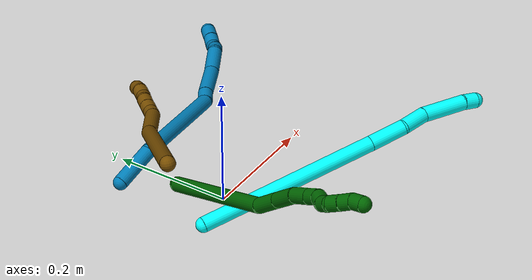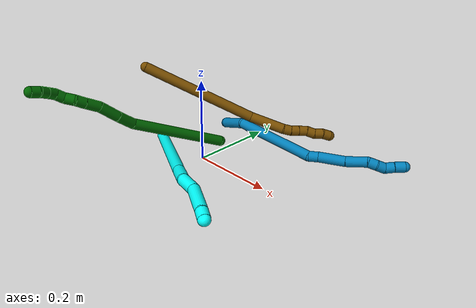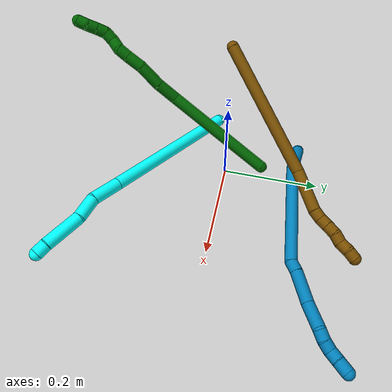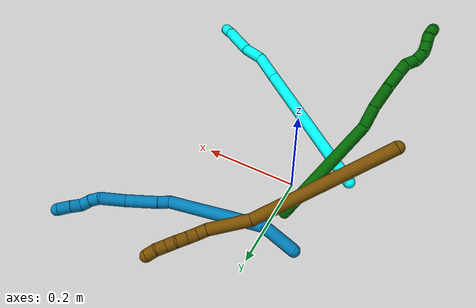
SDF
<sdf version="1.7">
 <world name="default">
  <model name="3">
   <static>0</static>
   <link name="3">
    <collision name="collision-cylinder-e_1_1_4">
     <pose>0.012003 0.006952 0.148515 -0.046779 0.080555 -0.001885</pose>
     <geometry><cylinder><radius>0.0125</radius><length>0.298323</length></cylinder></geometry>
     <surface>
      <friction><ode><mu>1.16</mu><mu2>1.16</mu2><slip1>0</slip1><slip2>0</slip2></ode></friction>
      <contact><ode><kp>1e+06</kp><kd>1</kd><max_vel>0</max_vel><min_depth>0.001</min_depth></ode></contact>
     </surface>
    </collision>
    <visual name="visual-cylinder-e_1_1_4">
     <pose>0.012003 0.006952 0.148515 -0.046779 0.080555 -0.001885</pose>
     <geometry><cylinder><radius>0.0125</radius><length>0.298323</length></cylinder></geometry>
     <material><ambient>0.003922 1 0.996078 1</ambient></material>
    </visual>
    <collision name="collision-cylinder-e_2_4_5">
     <pose>0.026843 0.015516 0.326698 -0.054253 0.095228 -0.002586</pose>
     <geometry><cylinder><radius>0.0125</radius><length>0.059694</length></cylinder></geometry>
     <surface>
      <friction><ode><mu>1.16</mu><mu2>1.16</mu2><slip1>0</slip1><slip2>0</slip2></ode></friction>
      <contact><ode><kp>1e+06</kp><kd>1</kd><max_vel>0</max_vel><min_depth>0.001</min_depth></ode></contact>
     </surface>
    </collision>
    <visual name="visual-cylinder-e_2_4_5">
     <pose>0.026843 0.015516 0.326698 -0.054253 0.095228 -0.002586</pose>
     <geometry><cylinder><radius>0.0125</radius><length>0.059694</length></cylinder></geometry>
     <material><ambient>0.003922 1 0.996078 1</ambient></material>
    </visual>
    <collision name="collision-cylinder-e_3_5_6">
     <pose>0.030885 0.010601 0.377937 0.293811 0.053367 0.007899</pose>
     <geometry><cylinder><radius>0.0125</radius><length>0.045137</length></cylinder></geometry>
     <surface>
      <friction><ode><mu>1.16</mu><mu2>1.16</mu2><slip1>0</slip1><slip2>0</slip2></ode></friction>
      <contact><ode><kp>1e+06</kp><kd>1</kd><max_vel>0</max_vel><min_depth>0.001</min_depth></ode></contact>
     </surface>
    </collision>
    <visual name="visual-cylinder-e_3_5_6">
     <pose>0.030885 0.010601 0.377937 0.293811 0.053367 0.007899</pose>
     <geometry><cylinder><radius>0.0125</radius><length>0.045137</length></cylinder></geometry>
     <material><ambient>0.003922 1 0.996078 1</ambient></material>
    </visual>
    <collision name="collision-cylinder-e_4_6_7">
     <pose>0.028613 0.002345 0.436431 0.046783 -0.093758 -0.002195</pose>
     <geometry><cylinder><radius>0.0125</radius><length>0.074254</length></cylinder></geometry>
     <surface>
      <friction><ode><mu>1.16</mu><mu2>1.16</mu2><slip1>0</slip1><slip2>0</slip2></ode></friction>
      <contact><ode><kp>1e+06</kp><kd>1</kd><max_vel>0</max_vel><min_depth>0.001</min_depth></ode></contact>
     </surface>
    </collision>
    <visual name="visual-cylinder-e_4_6_7">
     <pose>0.028613 0.002345 0.436431 0.046783 -0.093758 -0.002195</pose>
     <geometry><cylinder><radius>0.0125</radius><length>0.074254</length></cylinder></geometry>
     <material><ambient>0.003922 1 0.996078 1</ambient></material>
    </visual>
    <collision name="collision-cylinder-e_5_7_2">
     <pose>0.022543 -0.000637 0.484277 0.11431 -0.231736 -0.013319</pose>
     <geometry><cylinder><radius>0.0125</radius><length>0.022592</length></cylinder></geometry>
     <surface>
      <friction><ode><mu>1.16</mu><mu2>1.16</mu2><slip1>0</slip1><slip2>0</slip2></ode></friction>
      <contact><ode><kp>1e+06</kp><kd>1</kd><max_vel>0</max_vel><min_depth>0.001</min_depth></ode></contact>
     </surface>
    </collision>
    <visual name="visual-cylinder-e_5_7_2">
     <pose>0.022543 -0.000637 0.484277 0.11431 -0.231736 -0.013319</pose>
     <geometry><cylinder><radius>0.0125</radius><length>0.022592</length></cylinder></geometry>
     <material><ambient>0.003922 1 0.996078 1</ambient></material>
    </visual>
    <collision name="collision-sphere-2">
     <pose>0.019949 -0.001891 0.495199 0 -0 0</pose>
     <geometry><sphere><radius>0.0125</radius></sphere></geometry>
     <surface>
      <friction><ode><mu>1.16</mu><mu2>1.16</mu2><slip1>0</slip1><slip2>0</slip2></ode></friction>
      <contact><ode><kp>1e+06</kp><kd>1</kd><max_vel>0</max_vel><min_depth>0.001</min_depth></ode></contact>
     </surface>
    </collision>
    <visual name="visual-sphere-2">
     <pose>0.019949 -0.001891 0.495199 0 -0 0</pose>
     <geometry><sphere><radius>0.0125</radius></sphere></geometry>
     <material><ambient>0.003922 1 0.996078 1</ambient></material>
    </visual>
    <collision name="collision-sphere-7">
     <pose>0.025137 0.000617 0.473355 0 -0 0</pose>
     <geometry><sphere><radius>0.0125</radius></sphere></geometry>
     <surface>
      <friction><ode><mu>1.16</mu><mu2>1.16</mu2><slip1>0</slip1><slip2>0</slip2></ode></friction>
      <contact><ode><kp>1e+06</kp><kd>1</kd><max_vel>0</max_vel><min_depth>0.001</min_depth></ode></contact>
     </surface>
    </collision>
    <visual name="visual-sphere-7">
     <pose>0.025137 0.000617 0.473355 0 -0 0</pose>
     <geometry><sphere><radius>0.0125</radius></sphere></geometry>
     <material><ambient>0.003922 1 0.996078 1</ambient></material>
    </visual>
    <collision name="collision-sphere-6">
     <pose>0.032089 0.004074 0.399507 0 -0 0</pose>
     <geometry><sphere><radius>0.0125</radius></sphere></geometry>
     <surface>
      <friction><ode><mu>1.16</mu><mu2>1.16</mu2><slip1>0</slip1><slip2>0</slip2></ode></friction>
      <contact><ode><kp>1e+06</kp><kd>1</kd><max_vel>0</max_vel><min_depth>0.001</min_depth></ode></contact>
     </surface>
    </collision>
    <visual name="visual-sphere-6">
     <pose>0.032089 0.004074 0.399507 0 -0 0</pose>
     <geometry><sphere><radius>0.0125</radius></sphere></geometry>
     <material><ambient>0.003922 1 0.996078 1</ambient></material>
    </visual>
    <collision name="collision-sphere-5">
     <pose>0.029681 0.017127 0.356366 0 -0 0</pose>
     <geometry><sphere><radius>0.0125</radius></sphere></geometry>
     <surface>
      <friction><ode><mu>1.16</mu><mu2>1.16</mu2><slip1>0</slip1><slip2>0</slip2></ode></friction>
      <contact><ode><kp>1e+06</kp><kd>1</kd><max_vel>0</max_vel><min_depth>0.001</min_depth></ode></contact>
     </surface>
    </collision>
    <visual name="visual-sphere-5">
     <pose>0.029681 0.017127 0.356366 0 -0 0</pose>
     <geometry><sphere><radius>0.0125</radius></sphere></geometry>
     <material><ambient>0.003922 1 0.996078 1</ambient></material>
    </visual>
    <collision name="collision-sphere-1">
     <geometry><sphere><radius>0.0125</radius></sphere></geometry>
     <surface>
      <friction><ode><mu>1.16</mu><mu2>1.16</mu2><slip1>0</slip1><slip2>0</slip2></ode></friction>
      <contact><ode><kp>1e+06</kp><kd>1</kd><max_vel>0</max_vel><min_depth>0.001</min_depth></ode></contact>
     </surface>
    </collision>
    <visual name="visual-sphere-1">
     <geometry><sphere><radius>0.0125</radius></sphere></geometry>
     <material><ambient>0.003922 1 0.996078 1</ambient></material>
    </visual>
    <collision name="collision-sphere-4">
     <pose>0.024005 0.013905 0.29703 0 -0 0</pose>
     <geometry><sphere><radius>0.0125</radius></sphere></geometry>
     <surface>
      <friction><ode><mu>1.16</mu><mu2>1.16</mu2><slip1>0</slip1><slip2>0</slip2></ode></friction>
      <contact><ode><kp>1e+06</kp><kd>1</kd><max_vel>0</max_vel><min_depth>0.001</min_depth></ode></contact>
     </surface>
    </collision>
    <visual name="visual-sphere-4">
     <pose>0.024005 0.013905 0.29703 0 -0 0</pose>
     <geometry><sphere><radius>0.0125</radius></sphere></geometry>
     <material><ambient>0.003922 1 0.996078 1</ambient></material>
    </visual>
    <inertial>
     <pose>0.018422 0.007277 0.248428 0 -0 0</pose>
     <mass>0.5</mass>
     <inertia>
      <ixx>0.002282</ixx>
      <ixy>0</ixy>
      <ixz>0</ixz>
      <iyy>0.002285</iyy>
      <iyz>0</iyz>
      <izz>-0.000239</izz>
     </inertia>
    </inertial>
   </link>
   <pose>-0.108725 -0.036326 0.036052 1.28336 -1.13413 1.29592</pose>
  </model>
  <model name="6">
   <static>0</static>
   <link name="6">
    <collision name="collision-cylinder-e_1_1_4">
     <pose>0.007203 -0.007028 0.118784 0.059101 0.060459 0.001788</pose>
     <geometry><cylinder><radius>0.0125</radius><length>0.238419</length></cylinder></geometry>
     <surface>
      <friction><ode><mu>1.16</mu><mu2>1.16</mu2><slip1>0</slip1><slip2>0</slip2></ode></friction>
      <contact><ode><kp>1e+06</kp><kd>1</kd><max_vel>0</max_vel><min_depth>0.001</min_depth></ode></contact>
     </surface>
    </collision>
    <visual name="visual-cylinder-e_1_1_4">
     <pose>0.007203 -0.007028 0.118784 0.059101 0.060459 0.001788</pose>
     <geometry><cylinder><radius>0.0125</radius><length>0.238419</length></cylinder></geometry>
     <material><ambient>0 0.392157 0.003922 1</ambient></material>
    </visual>
    <collision name="collision-cylinder-e_2_4_5">
     <pose>0.0113 -0.021379 0.259489 0.322365 -0.133594 -0.021753</pose>
     <geometry><cylinder><radius>0.0125</radius><length>0.046639</length></cylinder></geometry>
     <surface>
      <friction><ode><mu>1.16</mu><mu2>1.16</mu2><slip1>0</slip1><slip2>0</slip2></ode></friction>
      <contact><ode><kp>1e+06</kp><kd>1</kd><max_vel>0</max_vel><min_depth>0.001</min_depth></ode></contact>
     </surface>
    </collision>
    <visual name="visual-cylinder-e_2_4_5">
     <pose>0.0113 -0.021379 0.259489 0.322365 -0.133594 -0.021753</pose>
     <geometry><cylinder><radius>0.0125</radius><length>0.046639</length></cylinder></geometry>
     <material><ambient>0 0.392157 0.003922 1</ambient></material>
    </visual>
    <collision name="collision-cylinder-e_3_5_6">
     <pose>0.00815 -0.037352 0.305397 0.346142 -0.001699 -0.000297</pose>
     <geometry><cylinder><radius>0.0125</radius><length>0.050998</length></cylinder></geometry>
     <surface>
      <friction><ode><mu>1.16</mu><mu2>1.16</mu2><slip1>0</slip1><slip2>0</slip2></ode></friction>
      <contact><ode><kp>1e+06</kp><kd>1</kd><max_vel>0</max_vel><min_depth>0.001</min_depth></ode></contact>
     </surface>
    </collision>
    <visual name="visual-cylinder-e_3_5_6">
     <pose>0.00815 -0.037352 0.305397 0.346142 -0.001699 -0.000297</pose>
     <geometry><cylinder><radius>0.0125</radius><length>0.050998</length></cylinder></geometry>
     <material><ambient>0 0.392157 0.003922 1</ambient></material>
    </visual>
    <collision name="collision-cylinder-e_4_6_7">
     <pose>0.007756 -0.048023 0.346551 0.117153 -0.020327 -0.001192</pose>
     <geometry><cylinder><radius>0.0125</radius><length>0.034579</length></cylinder></geometry>
     <surface>
      <friction><ode><mu>1.16</mu><mu2>1.16</mu2><slip1>0</slip1><slip2>0</slip2></ode></friction>
      <contact><ode><kp>1e+06</kp><kd>1</kd><max_vel>0</max_vel><min_depth>0.001</min_depth></ode></contact>
     </surface>
    </collision>
    <visual name="visual-cylinder-e_4_6_7">
     <pose>0.007756 -0.048023 0.346551 0.117153 -0.020327 -0.001192</pose>
     <geometry><cylinder><radius>0.0125</radius><length>0.034579</length></cylinder></geometry>
     <material><ambient>0 0.392157 0.003922 1</ambient></material>
    </visual>
    <collision name="collision-cylinder-e_5_7_8">
     <pose>0.00751 -0.051866 0.375317 0.15585 0.009013 0.000704</pose>
     <geometry><cylinder><radius>0.0125</radius><length>0.023482</length></cylinder></geometry>
     <surface>
      <friction><ode><mu>1.16</mu><mu2>1.16</mu2><slip1>0</slip1><slip2>0</slip2></ode></friction>
      <contact><ode><kp>1e+06</kp><kd>1</kd><max_vel>0</max_vel><min_depth>0.001</min_depth></ode></contact>
     </surface>
    </collision>
    <visual name="visual-cylinder-e_5_7_8">
     <pose>0.00751 -0.051866 0.375317 0.15585 0.009013 0.000704</pose>
     <geometry><cylinder><radius>0.0125</radius><length>0.023482</length></cylinder></geometry>
     <material><ambient>0 0.392157 0.003922 1</ambient></material>
    </visual>
    <collision name="collision-cylinder-e_6_8_9">
     <pose>0.013154 -0.053069 0.397388 -0.059055 0.485686 -0.014634</pose>
     <geometry><cylinder><radius>0.0125</radius><length>0.023727</length></cylinder></geometry>
     <surface>
      <friction><ode><mu>1.16</mu><mu2>1.16</mu2><slip1>0</slip1><slip2>0</slip2></ode></friction>
      <contact><ode><kp>1e+06</kp><kd>1</kd><max_vel>0</max_vel><min_depth>0.001</min_depth></ode></contact>
     </surface>
    </collision>
    <visual name="visual-cylinder-e_6_8_9">
     <pose>0.013154 -0.053069 0.397388 -0.059055 0.485686 -0.014634</pose>
     <geometry><cylinder><radius>0.0125</radius><length>0.023727</length></cylinder></geometry>
     <material><ambient>0 0.392157 0.003922 1</ambient></material>
    </visual>
    <collision name="collision-cylinder-e_7_9_10">
     <pose>0.020035 -0.055063 0.418089 0.25008 0.126542 0.015927</pose>
     <geometry><cylinder><radius>0.0125</radius><length>0.021282</length></cylinder></geometry>
     <surface>
      <friction><ode><mu>1.16</mu><mu2>1.16</mu2><slip1>0</slip1><slip2>0</slip2></ode></friction>
      <contact><ode><kp>1e+06</kp><kd>1</kd><max_vel>0</max_vel><min_depth>0.001</min_depth></ode></contact>
     </surface>
    </collision>
    <visual name="visual-cylinder-e_7_9_10">
     <pose>0.020035 -0.055063 0.418089 0.25008 0.126542 0.015927</pose>
     <geometry><cylinder><radius>0.0125</radius><length>0.021282</length></cylinder></geometry>
     <material><ambient>0 0.392157 0.003922 1</ambient></material>
    </visual>
    <collision name="collision-cylinder-e_8_10_11">
     <pose>0.018129 -0.058717 0.438099 0.106161 -0.318983 -0.017093</pose>
     <geometry><cylinder><radius>0.0125</radius><length>0.020722</length></cylinder></geometry>
     <surface>
      <friction><ode><mu>1.16</mu><mu2>1.16</mu2><slip1>0</slip1><slip2>0</slip2></ode></friction>
      <contact><ode><kp>1e+06</kp><kd>1</kd><max_vel>0</max_vel><min_depth>0.001</min_depth></ode></contact>
     </surface>
    </collision>
    <visual name="visual-cylinder-e_8_10_11">
     <pose>0.018129 -0.058717 0.438099 0.106161 -0.318983 -0.017093</pose>
     <geometry><cylinder><radius>0.0125</radius><length>0.020722</length></cylinder></geometry>
     <material><ambient>0 0.392157 0.003922 1</ambient></material>
    </visual>
    <collision name="collision-cylinder-e_9_11_12">
     <pose>0.011003 -0.060739 0.457086 0.105969 -0.396661 -0.021316</pose>
     <geometry><cylinder><radius>0.0125</radius><length>0.02007</length></cylinder></geometry>
     <surface>
      <friction><ode><mu>1.16</mu><mu2>1.16</mu2><slip1>0</slip1><slip2>0</slip2></ode></friction>
      <contact><ode><kp>1e+06</kp><kd>1</kd><max_vel>0</max_vel><min_depth>0.001</min_depth></ode></contact>
     </surface>
    </collision>
    <visual name="visual-cylinder-e_9_11_12">
     <pose>0.011003 -0.060739 0.457086 0.105969 -0.396661 -0.021316</pose>
     <geometry><cylinder><radius>0.0125</radius><length>0.02007</length></cylinder></geometry>
     <material><ambient>0 0.392157 0.003922 1</ambient></material>
    </visual>
    <collision name="collision-cylinder-e_10_12_2">
     <pose>0.005984 -0.06048 0.476189 -0.124349 -0.113915 0.007099</pose>
     <geometry><cylinder><radius>0.0125</radius><length>0.020082</length></cylinder></geometry>
     <surface>
      <friction><ode><mu>1.16</mu><mu2>1.16</mu2><slip1>0</slip1><slip2>0</slip2></ode></friction>
      <contact><ode><kp>1e+06</kp><kd>1</kd><max_vel>0</max_vel><min_depth>0.001</min_depth></ode></contact>
     </surface>
    </collision>
    <visual name="visual-cylinder-e_10_12_2">
     <pose>0.005984 -0.06048 0.476189 -0.124349 -0.113915 0.007099</pose>
     <geometry><cylinder><radius>0.0125</radius><length>0.020082</length></cylinder></geometry>
     <material><ambient>0 0.392157 0.003922 1</ambient></material>
    </visual>
    <collision name="collision-sphere-2">
     <pose>0.004843 -0.059243 0.486088 0 -0 0</pose>
     <geometry><sphere><radius>0.0125</radius></sphere></geometry>
     <surface>
      <friction><ode><mu>1.16</mu><mu2>1.16</mu2><slip1>0</slip1><slip2>0</slip2></ode></friction>
      <contact><ode><kp>1e+06</kp><kd>1</kd><max_vel>0</max_vel><min_depth>0.001</min_depth></ode></contact>
     </surface>
    </collision>
    <visual name="visual-sphere-2">
     <pose>0.004843 -0.059243 0.486088 0 -0 0</pose>
     <geometry><sphere><radius>0.0125</radius></sphere></geometry>
     <material><ambient>0 0.392157 0.003922 1</ambient></material>
    </visual>
    <collision name="collision-sphere-12">
     <pose>0.007126 -0.061718 0.46629 0 -0 0</pose>
     <geometry><sphere><radius>0.0125</radius></sphere></geometry>
     <surface>
      <friction><ode><mu>1.16</mu><mu2>1.16</mu2><slip1>0</slip1><slip2>0</slip2></ode></friction>
      <contact><ode><kp>1e+06</kp><kd>1</kd><max_vel>0</max_vel><min_depth>0.001</min_depth></ode></contact>
     </surface>
    </collision>
    <visual name="visual-sphere-12">
     <pose>0.007126 -0.061718 0.46629 0 -0 0</pose>
     <geometry><sphere><radius>0.0125</radius></sphere></geometry>
     <material><ambient>0 0.392157 0.003922 1</ambient></material>
    </visual>
    <collision name="collision-sphere-11">
     <pose>0.01488 -0.05976 0.447882 0 -0 0</pose>
     <geometry><sphere><radius>0.0125</radius></sphere></geometry>
     <surface>
      <friction><ode><mu>1.16</mu><mu2>1.16</mu2><slip1>0</slip1><slip2>0</slip2></ode></friction>
      <contact><ode><kp>1e+06</kp><kd>1</kd><max_vel>0</max_vel><min_depth>0.001</min_depth></ode></contact>
     </surface>
    </collision>
    <visual name="visual-sphere-11">
     <pose>0.01488 -0.05976 0.447882 0 -0 0</pose>
     <geometry><sphere><radius>0.0125</radius></sphere></geometry>
     <material><ambient>0 0.392157 0.003922 1</ambient></material>
    </visual>
    <collision name="collision-sphere-10">
     <pose>0.021378 -0.057675 0.428317 0 -0 0</pose>
     <geometry><sphere><radius>0.0125</radius></sphere></geometry>
     <surface>
      <friction><ode><mu>1.16</mu><mu2>1.16</mu2><slip1>0</slip1><slip2>0</slip2></ode></friction>
      <contact><ode><kp>1e+06</kp><kd>1</kd><max_vel>0</max_vel><min_depth>0.001</min_depth></ode></contact>
     </surface>
    </collision>
    <visual name="visual-sphere-10">
     <pose>0.021378 -0.057675 0.428317 0 -0 0</pose>
     <geometry><sphere><radius>0.0125</radius></sphere></geometry>
     <material><ambient>0 0.392157 0.003922 1</ambient></material>
    </visual>
    <collision name="collision-sphere-9">
     <pose>0.018692 -0.05245 0.407862 0 -0 0</pose>
     <geometry><sphere><radius>0.0125</radius></sphere></geometry>
     <surface>
      <friction><ode><mu>1.16</mu><mu2>1.16</mu2><slip1>0</slip1><slip2>0</slip2></ode></friction>
      <contact><ode><kp>1e+06</kp><kd>1</kd><max_vel>0</max_vel><min_depth>0.001</min_depth></ode></contact>
     </surface>
    </collision>
    <visual name="visual-sphere-9">
     <pose>0.018692 -0.05245 0.407862 0 -0 0</pose>
     <geometry><sphere><radius>0.0125</radius></sphere></geometry>
     <material><ambient>0 0.392157 0.003922 1</ambient></material>
    </visual>
    <collision name="collision-sphere-4">
     <pose>0.014406 -0.014057 0.237568 0 -0 0</pose>
     <geometry><sphere><radius>0.0125</radius></sphere></geometry>
     <surface>
      <friction><ode><mu>1.16</mu><mu2>1.16</mu2><slip1>0</slip1><slip2>0</slip2></ode></friction>
      <contact><ode><kp>1e+06</kp><kd>1</kd><max_vel>0</max_vel><min_depth>0.001</min_depth></ode></contact>
     </surface>
    </collision>
    <visual name="visual-sphere-4">
     <pose>0.014406 -0.014057 0.237568 0 -0 0</pose>
     <geometry><sphere><radius>0.0125</radius></sphere></geometry>
     <material><ambient>0 0.392157 0.003922 1</ambient></material>
    </visual>
    <collision name="collision-sphere-1">
     <geometry><sphere><radius>0.0125</radius></sphere></geometry>
     <surface>
      <friction><ode><mu>1.16</mu><mu2>1.16</mu2><slip1>0</slip1><slip2>0</slip2></ode></friction>
      <contact><ode><kp>1e+06</kp><kd>1</kd><max_vel>0</max_vel><min_depth>0.001</min_depth></ode></contact>
     </surface>
    </collision>
    <visual name="visual-sphere-1">
     <geometry><sphere><radius>0.0125</radius></sphere></geometry>
     <material><ambient>0 0.392157 0.003922 1</ambient></material>
    </visual>
    <collision name="collision-sphere-8">
     <pose>0.007616 -0.053689 0.386915 0 -0 0</pose>
     <geometry><sphere><radius>0.0125</radius></sphere></geometry>
     <surface>
      <friction><ode><mu>1.16</mu><mu2>1.16</mu2><slip1>0</slip1><slip2>0</slip2></ode></friction>
      <contact><ode><kp>1e+06</kp><kd>1</kd><max_vel>0</max_vel><min_depth>0.001</min_depth></ode></contact>
     </surface>
    </collision>
    <visual name="visual-sphere-8">
     <pose>0.007616 -0.053689 0.386915 0 -0 0</pose>
     <geometry><sphere><radius>0.0125</radius></sphere></geometry>
     <material><ambient>0 0.392157 0.003922 1</ambient></material>
    </visual>
    <collision name="collision-sphere-5">
     <pose>0.008194 -0.028701 0.28141 0 -0 0</pose>
     <geometry><sphere><radius>0.0125</radius></sphere></geometry>
     <surface>
      <friction><ode><mu>1.16</mu><mu2>1.16</mu2><slip1>0</slip1><slip2>0</slip2></ode></friction>
      <contact><ode><kp>1e+06</kp><kd>1</kd><max_vel>0</max_vel><min_depth>0.001</min_depth></ode></contact>
     </surface>
    </collision>
    <visual name="visual-sphere-5">
     <pose>0.008194 -0.028701 0.28141 0 -0 0</pose>
     <geometry><sphere><radius>0.0125</radius></sphere></geometry>
     <material><ambient>0 0.392157 0.003922 1</ambient></material>
    </visual>
    <collision name="collision-sphere-6">
     <pose>0.008107 -0.046003 0.329384 0 -0 0</pose>
     <geometry><sphere><radius>0.0125</radius></sphere></geometry>
     <surface>
      <friction><ode><mu>1.16</mu><mu2>1.16</mu2><slip1>0</slip1><slip2>0</slip2></ode></friction>
      <contact><ode><kp>1e+06</kp><kd>1</kd><max_vel>0</max_vel><min_depth>0.001</min_depth></ode></contact>
     </surface>
    </collision>
    <visual name="visual-sphere-6">
     <pose>0.008107 -0.046003 0.329384 0 -0 0</pose>
     <geometry><sphere><radius>0.0125</radius></sphere></geometry>
     <material><ambient>0 0.392157 0.003922 1</ambient></material>
    </visual>
    <collision name="collision-sphere-7">
     <pose>0.007404 -0.050044 0.363719 0 -0 0</pose>
     <geometry><sphere><radius>0.0125</radius></sphere></geometry>
     <surface>
      <friction><ode><mu>1.16</mu><mu2>1.16</mu2><slip1>0</slip1><slip2>0</slip2></ode></friction>
      <contact><ode><kp>1e+06</kp><kd>1</kd><max_vel>0</max_vel><min_depth>0.001</min_depth></ode></contact>
     </surface>
    </collision>
    <visual name="visual-sphere-7">
     <pose>0.007404 -0.050044 0.363719 0 -0 0</pose>
     <geometry><sphere><radius>0.0125</radius></sphere></geometry>
     <material><ambient>0 0.392157 0.003922 1</ambient></material>
    </visual>
    <inertial>
     <pose>0.009119 -0.027075 0.245871 0 -0 0</pose>
     <mass>0.5</mass>
     <inertia>
      <ixx>0.001176</ixx>
      <ixy>0</ixy>
      <ixz>0</ixz>
      <iyy>0.001171</iyy>
      <iyz>0</iyz>
      <izz>4.7e-05</izz>
     </inertia>
    </inertial>
   </link>
   <pose>-0.019155 0.0761 0.011978 -1.232 0.051474 2.87971</pose>
  </model>
  <model name="9">
   <static>0</static>
   <link name="9">
    <collision name="collision-cylinder-e_1_1_4">
     <pose>0.005015 0.016483 0.031125 -0.487039 0.141451 -0.035199</pose>
     <geometry><cylinder><radius>0.0125</radius><length>0.071151</length></cylinder></geometry>
     <surface>
      <friction><ode><mu>1.16</mu><mu2>1.16</mu2><slip1>0</slip1><slip2>0</slip2></ode></friction>
      <contact><ode><kp>1e+06</kp><kd>1</kd><max_vel>0</max_vel><min_depth>0.001</min_depth></ode></contact>
     </surface>
    </collision>
    <visual name="visual-cylinder-e_1_1_4">
     <pose>0.005015 0.016483 0.031125 -0.487039 0.141451 -0.035199</pose>
     <geometry><cylinder><radius>0.0125</radius><length>0.071151</length></cylinder></geometry>
     <material><ambient>0 0.490196 0.709804 1</ambient></material>
    </visual>
    <collision name="collision-cylinder-e_2_4_5">
     <pose>-0.002564 0.037088 0.162172 -0.041222 -0.125279 0.002586</pose>
     <geometry><cylinder><radius>0.0125</radius><length>0.201594</length></cylinder></geometry>
     <surface>
      <friction><ode><mu>1.16</mu><mu2>1.16</mu2><slip1>0</slip1><slip2>0</slip2></ode></friction>
      <contact><ode><kp>1e+06</kp><kd>1</kd><max_vel>0</max_vel><min_depth>0.001</min_depth></ode></contact>
     </surface>
    </collision>
    <visual name="visual-cylinder-e_2_4_5">
     <pose>-0.002564 0.037088 0.162172 -0.041222 -0.125279 0.002586</pose>
     <geometry><cylinder><radius>0.0125</radius><length>0.201594</length></cylinder></geometry>
     <material><ambient>0 0.490196 0.709804 1</ambient></material>
    </visual>
    <collision name="collision-cylinder-e_3_5_6">
     <pose>-0.01212 0.038507 0.273059 0.241684 0.262797 0.032095</pose>
     <geometry><cylinder><radius>0.0125</radius><length>0.02339</length></cylinder></geometry>
     <surface>
      <friction><ode><mu>1.16</mu><mu2>1.16</mu2><slip1>0</slip1><slip2>0</slip2></ode></friction>
      <contact><ode><kp>1e+06</kp><kd>1</kd><max_vel>0</max_vel><min_depth>0.001</min_depth></ode></contact>
     </surface>
    </collision>
    <visual name="visual-cylinder-e_3_5_6">
     <pose>-0.01212 0.038507 0.273059 0.241684 0.262797 0.032095</pose>
     <geometry><cylinder><radius>0.0125</radius><length>0.02339</length></cylinder></geometry>
     <material><ambient>0 0.490196 0.709804 1</ambient></material>
    </visual>
    <collision name="collision-cylinder-e_4_6_7">
     <pose>-0.003705 0.031188 0.315637 0.144974 0.16675 0.012136</pose>
     <geometry><cylinder><radius>0.0125</radius><length>0.064794</length></cylinder></geometry>
     <surface>
      <friction><ode><mu>1.16</mu><mu2>1.16</mu2><slip1>0</slip1><slip2>0</slip2></ode></friction>
      <contact><ode><kp>1e+06</kp><kd>1</kd><max_vel>0</max_vel><min_depth>0.001</min_depth></ode></contact>
     </surface>
    </collision>
    <visual name="visual-cylinder-e_4_6_7">
     <pose>-0.003705 0.031188 0.315637 0.144974 0.16675 0.012136</pose>
     <geometry><cylinder><radius>0.0125</radius><length>0.064794</length></cylinder></geometry>
     <material><ambient>0 0.490196 0.709804 1</ambient></material>
    </visual>
    <collision name="collision-cylinder-e_5_7_8">
     <pose>0.009401 0.024028 0.371604 0.104089 0.305713 0.01605</pose>
     <geometry><cylinder><radius>0.0125</radius><length>0.051357</length></cylinder></geometry>
     <surface>
      <friction><ode><mu>1.16</mu><mu2>1.16</mu2><slip1>0</slip1><slip2>0</slip2></ode></friction>
      <contact><ode><kp>1e+06</kp><kd>1</kd><max_vel>0</max_vel><min_depth>0.001</min_depth></ode></contact>
     </surface>
    </collision>
    <visual name="visual-cylinder-e_5_7_8">
     <pose>0.009401 0.024028 0.371604 0.104089 0.305713 0.01605</pose>
     <geometry><cylinder><radius>0.0125</radius><length>0.051357</length></cylinder></geometry>
     <material><ambient>0 0.490196 0.709804 1</ambient></material>
    </visual>
    <collision name="collision-cylinder-e_6_8_9">
     <pose>0.017008 0.017456 0.40532 0.406367 -0.011882 -0.002448</pose>
     <geometry><cylinder><radius>0.0125</radius><length>0.020381</length></cylinder></geometry>
     <surface>
      <friction><ode><mu>1.16</mu><mu2>1.16</mu2><slip1>0</slip1><slip2>0</slip2></ode></friction>
      <contact><ode><kp>1e+06</kp><kd>1</kd><max_vel>0</max_vel><min_depth>0.001</min_depth></ode></contact>
     </surface>
    </collision>
    <visual name="visual-cylinder-e_6_8_9">
     <pose>0.017008 0.017456 0.40532 0.406367 -0.011882 -0.002448</pose>
     <geometry><cylinder><radius>0.0125</radius><length>0.020381</length></cylinder></geometry>
     <material><ambient>0 0.490196 0.709804 1</ambient></material>
    </visual>
    <collision name="collision-cylinder-e_7_9_10">
     <pose>0.016817 0.007152 0.423046 0.64367 -0.006712 -0.002238</pose>
     <geometry><cylinder><radius>0.0125</radius><length>0.020919</length></cylinder></geometry>
     <surface>
      <friction><ode><mu>1.16</mu><mu2>1.16</mu2><slip1>0</slip1><slip2>0</slip2></ode></friction>
      <contact><ode><kp>1e+06</kp><kd>1</kd><max_vel>0</max_vel><min_depth>0.001</min_depth></ode></contact>
     </surface>
    </collision>
    <visual name="visual-cylinder-e_7_9_10">
     <pose>0.016817 0.007152 0.423046 0.64367 -0.006712 -0.002238</pose>
     <geometry><cylinder><radius>0.0125</radius><length>0.020919</length></cylinder></geometry>
     <material><ambient>0 0.490196 0.709804 1</ambient></material>
    </visual>
    <collision name="collision-cylinder-e_8_10_11">
     <pose>0.021397 -0.002696 0.440572 0.371689 0.441846 0.084402</pose>
     <geometry><cylinder><radius>0.0125</radius><length>0.02175</length></cylinder></geometry>
     <surface>
      <friction><ode><mu>1.16</mu><mu2>1.16</mu2><slip1>0</slip1><slip2>0</slip2></ode></friction>
      <contact><ode><kp>1e+06</kp><kd>1</kd><max_vel>0</max_vel><min_depth>0.001</min_depth></ode></contact>
     </surface>
    </collision>
    <visual name="visual-cylinder-e_8_10_11">
     <pose>0.021397 -0.002696 0.440572 0.371689 0.441846 0.084402</pose>
     <geometry><cylinder><radius>0.0125</radius><length>0.02175</length></cylinder></geometry>
     <material><ambient>0 0.490196 0.709804 1</ambient></material>
    </visual>
    <collision name="collision-cylinder-e_9_11_2">
     <pose>0.030543 -0.011317 0.460044 0.455382 0.373185 0.087432</pose>
     <geometry><cylinder><radius>0.0125</radius><length>0.024664</length></cylinder></geometry>
     <surface>
      <friction><ode><mu>1.16</mu><mu2>1.16</mu2><slip1>0</slip1><slip2>0</slip2></ode></friction>
      <contact><ode><kp>1e+06</kp><kd>1</kd><max_vel>0</max_vel><min_depth>0.001</min_depth></ode></contact>
     </surface>
    </collision>
    <visual name="visual-cylinder-e_9_11_2">
     <pose>0.030543 -0.011317 0.460044 0.455382 0.373185 0.087432</pose>
     <geometry><cylinder><radius>0.0125</radius><length>0.024664</length></cylinder></geometry>
     <material><ambient>0 0.490196 0.709804 1</ambient></material>
    </visual>
    <collision name="collision-sphere-2">
     <pose>0.035039 -0.016367 0.470357 0 -0 0</pose>
     <geometry><sphere><radius>0.0125</radius></sphere></geometry>
     <surface>
      <friction><ode><mu>1.16</mu><mu2>1.16</mu2><slip1>0</slip1><slip2>0</slip2></ode></friction>
      <contact><ode><kp>1e+06</kp><kd>1</kd><max_vel>0</max_vel><min_depth>0.001</min_depth></ode></contact>
     </surface>
    </collision>
    <visual name="visual-sphere-2">
     <pose>0.035039 -0.016367 0.470357 0 -0 0</pose>
     <geometry><sphere><radius>0.0125</radius></sphere></geometry>
     <material><ambient>0 0.490196 0.709804 1</ambient></material>
    </visual>
    <collision name="collision-sphere-11">
     <pose>0.026047 -0.006266 0.449732 0 -0 0</pose>
     <geometry><sphere><radius>0.0125</radius></sphere></geometry>
     <surface>
      <friction><ode><mu>1.16</mu><mu2>1.16</mu2><slip1>0</slip1><slip2>0</slip2></ode></friction>
      <contact><ode><kp>1e+06</kp><kd>1</kd><max_vel>0</max_vel><min_depth>0.001</min_depth></ode></contact>
     </surface>
    </collision>
    <visual name="visual-sphere-11">
     <pose>0.026047 -0.006266 0.449732 0 -0 0</pose>
     <geometry><sphere><radius>0.0125</radius></sphere></geometry>
     <material><ambient>0 0.490196 0.709804 1</ambient></material>
    </visual>
    <collision name="collision-sphere-10">
     <pose>0.016746 0.000875 0.431413 0 -0 0</pose>
     <geometry><sphere><radius>0.0125</radius></sphere></geometry>
     <surface>
      <friction><ode><mu>1.16</mu><mu2>1.16</mu2><slip1>0</slip1><slip2>0</slip2></ode></friction>
      <contact><ode><kp>1e+06</kp><kd>1</kd><max_vel>0</max_vel><min_depth>0.001</min_depth></ode></contact>
     </surface>
    </collision>
    <visual name="visual-sphere-10">
     <pose>0.016746 0.000875 0.431413 0 -0 0</pose>
     <geometry><sphere><radius>0.0125</radius></sphere></geometry>
     <material><ambient>0 0.490196 0.709804 1</ambient></material>
    </visual>
    <collision name="collision-sphere-9">
     <pose>0.016887 0.013428 0.41468 0 -0 0</pose>
     <geometry><sphere><radius>0.0125</radius></sphere></geometry>
     <surface>
      <friction><ode><mu>1.16</mu><mu2>1.16</mu2><slip1>0</slip1><slip2>0</slip2></ode></friction>
      <contact><ode><kp>1e+06</kp><kd>1</kd><max_vel>0</max_vel><min_depth>0.001</min_depth></ode></contact>
     </surface>
    </collision>
    <visual name="visual-sphere-9">
     <pose>0.016887 0.013428 0.41468 0 -0 0</pose>
     <geometry><sphere><radius>0.0125</radius></sphere></geometry>
     <material><ambient>0 0.490196 0.709804 1</ambient></material>
    </visual>
    <collision name="collision-sphere-4">
     <pose>0.010031 0.032967 0.06225 0 -0 0</pose>
     <geometry><sphere><radius>0.0125</radius></sphere></geometry>
     <surface>
      <friction><ode><mu>1.16</mu><mu2>1.16</mu2><slip1>0</slip1><slip2>0</slip2></ode></friction>
      <contact><ode><kp>1e+06</kp><kd>1</kd><max_vel>0</max_vel><min_depth>0.001</min_depth></ode></contact>
     </surface>
    </collision>
    <visual name="visual-sphere-4">
     <pose>0.010031 0.032967 0.06225 0 -0 0</pose>
     <geometry><sphere><radius>0.0125</radius></sphere></geometry>
     <material><ambient>0 0.490196 0.709804 1</ambient></material>
    </visual>
    <collision name="collision-sphere-1">
     <geometry><sphere><radius>0.0125</radius></sphere></geometry>
     <surface>
      <friction><ode><mu>1.16</mu><mu2>1.16</mu2><slip1>0</slip1><slip2>0</slip2></ode></friction>
      <contact><ode><kp>1e+06</kp><kd>1</kd><max_vel>0</max_vel><min_depth>0.001</min_depth></ode></contact>
     </surface>
    </collision>
    <visual name="visual-sphere-1">
     <geometry><sphere><radius>0.0125</radius></sphere></geometry>
     <material><ambient>0 0.490196 0.709804 1</ambient></material>
    </visual>
    <collision name="collision-sphere-8">
     <pose>0.017129 0.021484 0.39596 0 -0 0</pose>
     <geometry><sphere><radius>0.0125</radius></sphere></geometry>
     <surface>
      <friction><ode><mu>1.16</mu><mu2>1.16</mu2><slip1>0</slip1><slip2>0</slip2></ode></friction>
      <contact><ode><kp>1e+06</kp><kd>1</kd><max_vel>0</max_vel><min_depth>0.001</min_depth></ode></contact>
     </surface>
    </collision>
    <visual name="visual-sphere-8">
     <pose>0.017129 0.021484 0.39596 0 -0 0</pose>
     <geometry><sphere><radius>0.0125</radius></sphere></geometry>
     <material><ambient>0 0.490196 0.709804 1</ambient></material>
    </visual>
    <collision name="collision-sphere-5">
     <pose>-0.015159 0.041209 0.262094 0 -0 0</pose>
     <geometry><sphere><radius>0.0125</radius></sphere></geometry>
     <surface>
      <friction><ode><mu>1.16</mu><mu2>1.16</mu2><slip1>0</slip1><slip2>0</slip2></ode></friction>
      <contact><ode><kp>1e+06</kp><kd>1</kd><max_vel>0</max_vel><min_depth>0.001</min_depth></ode></contact>
     </surface>
    </collision>
    <visual name="visual-sphere-5">
     <pose>-0.015159 0.041209 0.262094 0 -0 0</pose>
     <geometry><sphere><radius>0.0125</radius></sphere></geometry>
     <material><ambient>0 0.490196 0.709804 1</ambient></material>
    </visual>
    <collision name="collision-sphere-6">
     <pose>-0.009082 0.035804 0.284024 0 -0 0</pose>
     <geometry><sphere><radius>0.0125</radius></sphere></geometry>
     <surface>
      <friction><ode><mu>1.16</mu><mu2>1.16</mu2><slip1>0</slip1><slip2>0</slip2></ode></friction>
      <contact><ode><kp>1e+06</kp><kd>1</kd><max_vel>0</max_vel><min_depth>0.001</min_depth></ode></contact>
     </surface>
    </collision>
    <visual name="visual-sphere-6">
     <pose>-0.009082 0.035804 0.284024 0 -0 0</pose>
     <geometry><sphere><radius>0.0125</radius></sphere></geometry>
     <material><ambient>0 0.490196 0.709804 1</ambient></material>
    </visual>
    <collision name="collision-sphere-7">
     <pose>0.001672 0.026573 0.347249 0 -0 0</pose>
     <geometry><sphere><radius>0.0125</radius></sphere></geometry>
     <surface>
      <friction><ode><mu>1.16</mu><mu2>1.16</mu2><slip1>0</slip1><slip2>0</slip2></ode></friction>
      <contact><ode><kp>1e+06</kp><kd>1</kd><max_vel>0</max_vel><min_depth>0.001</min_depth></ode></contact>
     </surface>
    </collision>
    <visual name="visual-sphere-7">
     <pose>0.001672 0.026573 0.347249 0 -0 0</pose>
     <geometry><sphere><radius>0.0125</radius></sphere></geometry>
     <material><ambient>0 0.490196 0.709804 1</ambient></material>
    </visual>
    <inertial>
     <pose>0.003433 0.025945 0.237739 0 -0 0</pose>
     <mass>0.5</mass>
     <inertia>
      <ixx>0.000768</ixx>
      <ixy>0</ixy>
      <ixz>0</ixz>
      <iyy>0.000766</iyy>
      <iyz>0</iyz>
      <izz>7.3e-05</izz>
     </inertia>
    </inertial>
   </link>
   <pose>-0.072882 0.149274 0.01971 1.66153 -0.980754 1.72311</pose>
  </model>
  <model name="12">
   <static>0</static>
   <link name="12">
    <collision name="collision-cylinder-e_1_1_4">
     <pose>0.139895 0.029846 -0.027327 -2.31217 1.28922 -2.08201</pose>
     <geometry><cylinder><radius>0.0125</radius><length>0.291261</length></cylinder></geometry>
     <surface>
      <friction><ode><mu>1.16</mu><mu2>1.16</mu2><slip1>0</slip1><slip2>0</slip2></ode></friction>
      <contact><ode><kp>1e+06</kp><kd>1</kd><max_vel>0</max_vel><min_depth>0.001</min_depth></ode></contact>
     </surface>
    </collision>
    <visual name="visual-cylinder-e_1_1_4">
     <pose>0.139895 0.029846 -0.027327 -2.31217 1.28922 -2.08201</pose>
     <geometry><cylinder><radius>0.0125</radius><length>0.291261</length></cylinder></geometry>
     <material><ambient>0.466667 0.301961 0 1</ambient></material>
    </visual>
    <collision name="collision-cylinder-e_2_4_5">
     <pose>0.323071 0.060586 -0.056567 -2.70441 1.52205 -2.6833</pose>
     <geometry><cylinder><radius>0.0125</radius><length>0.086663</length></cylinder></geometry>
     <surface>
      <friction><ode><mu>1.16</mu><mu2>1.16</mu2><slip1>0</slip1><slip2>0</slip2></ode></friction>
      <contact><ode><kp>1e+06</kp><kd>1</kd><max_vel>0</max_vel><min_depth>0.001</min_depth></ode></contact>
     </surface>
    </collision>
    <visual name="visual-cylinder-e_2_4_5">
     <pose>0.323071 0.060586 -0.056567 -2.70441 1.52205 -2.6833</pose>
     <geometry><cylinder><radius>0.0125</radius><length>0.086663</length></cylinder></geometry>
     <material><ambient>0.466667 0.301961 0 1</ambient></material>
    </visual>
    <collision name="collision-cylinder-e_3_5_6">
     <pose>0.376047 0.064014 -0.058251 -1.48041 1.31414 -1.2277</pose>
     <geometry><cylinder><radius>0.0125</radius><length>0.02005</length></cylinder></geometry>
     <surface>
      <friction><ode><mu>1.16</mu><mu2>1.16</mu2><slip1>0</slip1><slip2>0</slip2></ode></friction>
      <contact><ode><kp>1e+06</kp><kd>1</kd><max_vel>0</max_vel><min_depth>0.001</min_depth></ode></contact>
     </surface>
    </collision>
    <visual name="visual-cylinder-e_3_5_6">
     <pose>0.376047 0.064014 -0.058251 -1.48041 1.31414 -1.2277</pose>
     <geometry><cylinder><radius>0.0125</radius><length>0.02005</length></cylinder></geometry>
     <material><ambient>0.466667 0.301961 0 1</ambient></material>
    </visual>
    <collision name="collision-cylinder-e_4_6_7">
     <pose>0.395141 0.069478 -0.05584 -0.93095 1.20009 -0.662044</pose>
     <geometry><cylinder><radius>0.0125</radius><length>0.020163</length></cylinder></geometry>
     <surface>
      <friction><ode><mu>1.16</mu><mu2>1.16</mu2><slip1>0</slip1><slip2>0</slip2></ode></friction>
      <contact><ode><kp>1e+06</kp><kd>1</kd><max_vel>0</max_vel><min_depth>0.001</min_depth></ode></contact>
     </surface>
    </collision>
    <visual name="visual-cylinder-e_4_6_7">
     <pose>0.395141 0.069478 -0.05584 -0.93095 1.20009 -0.662044</pose>
     <geometry><cylinder><radius>0.0125</radius><length>0.020163</length></cylinder></geometry>
     <material><ambient>0.466667 0.301961 0 1</ambient></material>
    </visual>
    <collision name="collision-cylinder-e_5_7_8">
     <pose>0.414162 0.075247 -0.051423 -0.903638 1.21156 -0.648562</pose>
     <geometry><cylinder><radius>0.0125</radius><length>0.020563</length></cylinder></geometry>
     <surface>
      <friction><ode><mu>1.16</mu><mu2>1.16</mu2><slip1>0</slip1><slip2>0</slip2></ode></friction>
      <contact><ode><kp>1e+06</kp><kd>1</kd><max_vel>0</max_vel><min_depth>0.001</min_depth></ode></contact>
     </surface>
    </collision>
    <visual name="visual-cylinder-e_5_7_8">
     <pose>0.414162 0.075247 -0.051423 -0.903638 1.21156 -0.648562</pose>
     <geometry><cylinder><radius>0.0125</radius><length>0.020563</length></cylinder></geometry>
     <material><ambient>0.466667 0.301961 0 1</ambient></material>
    </visual>
    <collision name="collision-cylinder-e_6_8_9">
     <pose>0.433723 0.079818 -0.050011 -2.01541 1.3802 -1.8359</pose>
     <geometry><cylinder><radius>0.0125</radius><length>0.020237</length></cylinder></geometry>
     <surface>
      <friction><ode><mu>1.16</mu><mu2>1.16</mu2><slip1>0</slip1><slip2>0</slip2></ode></friction>
      <contact><ode><kp>1e+06</kp><kd>1</kd><max_vel>0</max_vel><min_depth>0.001</min_depth></ode></contact>
     </surface>
    </collision>
    <visual name="visual-cylinder-e_6_8_9">
     <pose>0.433723 0.079818 -0.050011 -2.01541 1.3802 -1.8359</pose>
     <geometry><cylinder><radius>0.0125</radius><length>0.020237</length></cylinder></geometry>
     <material><ambient>0.466667 0.301961 0 1</ambient></material>
    </visual>
    <collision name="collision-cylinder-e_7_9_10">
     <pose>0.453367 0.084731 -0.048397 -0.917084 1.17916 -0.637886</pose>
     <geometry><cylinder><radius>0.0125</radius><length>0.021009</length></cylinder></geometry>
     <surface>
      <friction><ode><mu>1.16</mu><mu2>1.16</mu2><slip1>0</slip1><slip2>0</slip2></ode></friction>
      <contact><ode><kp>1e+06</kp><kd>1</kd><max_vel>0</max_vel><min_depth>0.001</min_depth></ode></contact>
     </surface>
    </collision>
    <visual name="visual-cylinder-e_7_9_10">
     <pose>0.453367 0.084731 -0.048397 -0.917084 1.17916 -0.637886</pose>
     <geometry><cylinder><radius>0.0125</radius><length>0.021009</length></cylinder></geometry>
     <material><ambient>0.466667 0.301961 0 1</ambient></material>
    </visual>
    <collision name="collision-cylinder-e_8_10_2">
     <pose>0.47241 0.091512 -0.046649 -1.76035 1.19677 -1.37961</pose>
     <geometry><cylinder><radius>0.0125</radius><length>0.020054</length></cylinder></geometry>
     <surface>
      <friction><ode><mu>1.16</mu><mu2>1.16</mu2><slip1>0</slip1><slip2>0</slip2></ode></friction>
      <contact><ode><kp>1e+06</kp><kd>1</kd><max_vel>0</max_vel><min_depth>0.001</min_depth></ode></contact>
     </surface>
    </collision>
    <visual name="visual-cylinder-e_8_10_2">
     <pose>0.47241 0.091512 -0.046649 -1.76035 1.19677 -1.37961</pose>
     <geometry><cylinder><radius>0.0125</radius><length>0.020054</length></cylinder></geometry>
     <material><ambient>0.466667 0.301961 0 1</ambient></material>
    </visual>
    <collision name="collision-sphere-2">
     <pose>0.481744 0.09511 -0.047339 0 -0 0</pose>
     <geometry><sphere><radius>0.0125</radius></sphere></geometry>
     <surface>
      <friction><ode><mu>1.16</mu><mu2>1.16</mu2><slip1>0</slip1><slip2>0</slip2></ode></friction>
      <contact><ode><kp>1e+06</kp><kd>1</kd><max_vel>0</max_vel><min_depth>0.001</min_depth></ode></contact>
     </surface>
    </collision>
    <visual name="visual-sphere-2">
     <pose>0.481744 0.09511 -0.047339 0 -0 0</pose>
     <geometry><sphere><radius>0.0125</radius></sphere></geometry>
     <material><ambient>0.466667 0.301961 0 1</ambient></material>
    </visual>
    <collision name="collision-sphere-10">
     <pose>0.463077 0.087914 -0.045959 0 -0 0</pose>
     <geometry><sphere><radius>0.0125</radius></sphere></geometry>
     <surface>
      <friction><ode><mu>1.16</mu><mu2>1.16</mu2><slip1>0</slip1><slip2>0</slip2></ode></friction>
      <contact><ode><kp>1e+06</kp><kd>1</kd><max_vel>0</max_vel><min_depth>0.001</min_depth></ode></contact>
     </surface>
    </collision>
    <visual name="visual-sphere-10">
     <pose>0.463077 0.087914 -0.045959 0 -0 0</pose>
     <geometry><sphere><radius>0.0125</radius></sphere></geometry>
     <material><ambient>0.466667 0.301961 0 1</ambient></material>
    </visual>
    <collision name="collision-sphere-9">
     <pose>0.443658 0.081548 -0.050836 0 -0 0</pose>
     <geometry><sphere><radius>0.0125</radius></sphere></geometry>
     <surface>
      <friction><ode><mu>1.16</mu><mu2>1.16</mu2><slip1>0</slip1><slip2>0</slip2></ode></friction>
      <contact><ode><kp>1e+06</kp><kd>1</kd><max_vel>0</max_vel><min_depth>0.001</min_depth></ode></contact>
     </surface>
    </collision>
    <visual name="visual-sphere-9">
     <pose>0.443658 0.081548 -0.050836 0 -0 0</pose>
     <geometry><sphere><radius>0.0125</radius></sphere></geometry>
     <material><ambient>0.466667 0.301961 0 1</ambient></material>
    </visual>
    <collision name="collision-sphere-4">
     <pose>0.279791 0.059692 -0.054655 0 -0 0</pose>
     <geometry><sphere><radius>0.0125</radius></sphere></geometry>
     <surface>
      <friction><ode><mu>1.16</mu><mu2>1.16</mu2><slip1>0</slip1><slip2>0</slip2></ode></friction>
      <contact><ode><kp>1e+06</kp><kd>1</kd><max_vel>0</max_vel><min_depth>0.001</min_depth></ode></contact>
     </surface>
    </collision>
    <visual name="visual-sphere-4">
     <pose>0.279791 0.059692 -0.054655 0 -0 0</pose>
     <geometry><sphere><radius>0.0125</radius></sphere></geometry>
     <material><ambient>0.466667 0.301961 0 1</ambient></material>
    </visual>
    <collision name="collision-sphere-1">
     <geometry><sphere><radius>0.0125</radius></sphere></geometry>
     <surface>
      <friction><ode><mu>1.16</mu><mu2>1.16</mu2><slip1>0</slip1><slip2>0</slip2></ode></friction>
      <contact><ode><kp>1e+06</kp><kd>1</kd><max_vel>0</max_vel><min_depth>0.001</min_depth></ode></contact>
     </surface>
    </collision>
    <visual name="visual-sphere-1">
     <geometry><sphere><radius>0.0125</radius></sphere></geometry>
     <material><ambient>0.466667 0.301961 0 1</ambient></material>
    </visual>
    <collision name="collision-sphere-8">
     <pose>0.423788 0.078087 -0.049187 0 -0 0</pose>
     <geometry><sphere><radius>0.0125</radius></sphere></geometry>
     <surface>
      <friction><ode><mu>1.16</mu><mu2>1.16</mu2><slip1>0</slip1><slip2>0</slip2></ode></friction>
      <contact><ode><kp>1e+06</kp><kd>1</kd><max_vel>0</max_vel><min_depth>0.001</min_depth></ode></contact>
     </surface>
    </collision>
    <visual name="visual-sphere-8">
     <pose>0.423788 0.078087 -0.049187 0 -0 0</pose>
     <geometry><sphere><radius>0.0125</radius></sphere></geometry>
     <material><ambient>0.466667 0.301961 0 1</ambient></material>
    </visual>
    <collision name="collision-sphere-5">
     <pose>0.366351 0.06148 -0.05848 0 -0 0</pose>
     <geometry><sphere><radius>0.0125</radius></sphere></geometry>
     <surface>
      <friction><ode><mu>1.16</mu><mu2>1.16</mu2><slip1>0</slip1><slip2>0</slip2></ode></friction>
      <contact><ode><kp>1e+06</kp><kd>1</kd><max_vel>0</max_vel><min_depth>0.001</min_depth></ode></contact>
     </surface>
    </collision>
    <visual name="visual-sphere-5">
     <pose>0.366351 0.06148 -0.05848 0 -0 0</pose>
     <geometry><sphere><radius>0.0125</radius></sphere></geometry>
     <material><ambient>0.466667 0.301961 0 1</ambient></material>
    </visual>
    <collision name="collision-sphere-6">
     <pose>0.385744 0.066549 -0.058021 0 -0 0</pose>
     <geometry><sphere><radius>0.0125</radius></sphere></geometry>
     <surface>
      <friction><ode><mu>1.16</mu><mu2>1.16</mu2><slip1>0</slip1><slip2>0</slip2></ode></friction>
      <contact><ode><kp>1e+06</kp><kd>1</kd><max_vel>0</max_vel><min_depth>0.001</min_depth></ode></contact>
     </surface>
    </collision>
    <visual name="visual-sphere-6">
     <pose>0.385744 0.066549 -0.058021 0 -0 0</pose>
     <geometry><sphere><radius>0.0125</radius></sphere></geometry>
     <material><ambient>0.466667 0.301961 0 1</ambient></material>
    </visual>
    <collision name="collision-sphere-7">
     <pose>0.404537 0.072408 -0.05366 0 -0 0</pose>
     <geometry><sphere><radius>0.0125</radius></sphere></geometry>
     <surface>
      <friction><ode><mu>1.16</mu><mu2>1.16</mu2><slip1>0</slip1><slip2>0</slip2></ode></friction>
      <contact><ode><kp>1e+06</kp><kd>1</kd><max_vel>0</max_vel><min_depth>0.001</min_depth></ode></contact>
     </surface>
    </collision>
    <visual name="visual-sphere-7">
     <pose>0.404537 0.072408 -0.05366 0 -0 0</pose>
     <geometry><sphere><radius>0.0125</radius></sphere></geometry>
     <material><ambient>0.466667 0.301961 0 1</ambient></material>
    </visual>
    <inertial>
     <pose>0.241087 0.046811 -0.038355 0 -0 0</pose>
     <mass>0.5</mass>
     <inertia>
      <ixx>-0.00075</ixx>
      <ixy>0</ixy>
      <ixz>0</ixz>
      <iyy>0.001532</iyy>
      <iyz>0</iyz>
      <izz>-0.002487</izz>
     </inertia>
    </inertial>
   </link>
   <pose>-0.179297 -0.024247 0.192619 -0.17997 0.236555 0.554779</pose>
  </model>
 </world>
</sdf>
